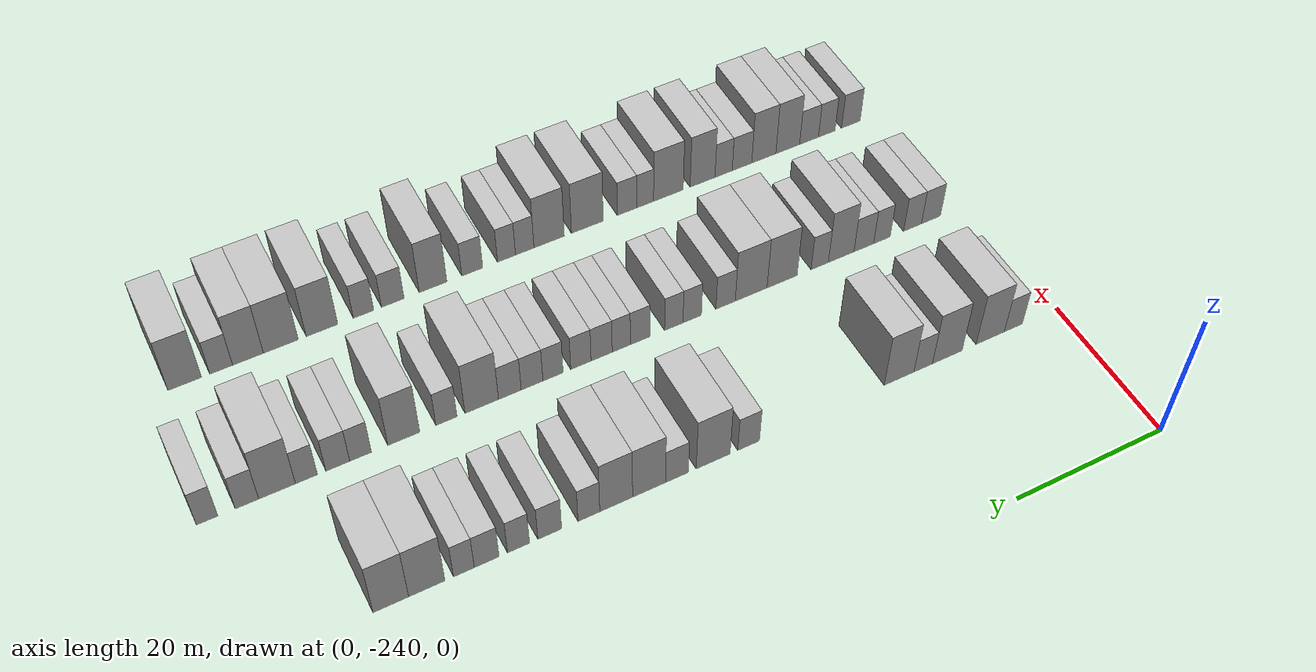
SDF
<sdf version="1.6">
 <world name="default">
  <model name="building_1">
   <static>1</static>
   <pose>25.0000 -233.6905 0 0.000000 0.000000 0.000000</pose>
   <link name="link">
    <pose>0 0 3.00 0 0 0</pose>
    <collision name="collision"><geometry><box><size>10.0000 2.6191 6.0000</size></box></geometry></collision>
    <visual name="visual">
     <cast_shadows>0</cast_shadows>
     <geometry><box><size>10.0000 2.6191 6.0000</size></box></geometry>
     <material>
      <script>
       <uri>model://HANNAS_wall/materials/scripts</uri>
       <uri>model://HANNAS_wall/materials/textures</uri>
       <name>vrc/HANNAS_wall</name>
      </script>
     </material>
    </visual>
   </link>
  </model>
  <model name="building_2">
   <static>1</static>
   <pose>25.0000 -230.3405 0 0.000000 0.000000 0.000000</pose>
   <link name="link">
    <pose>0 0 4.50 0 0 0</pose>
    <collision name="collision"><geometry><box><size>10.0000 4.0808 9.0000</size></box></geometry></collision>
    <visual name="visual">
     <cast_shadows>0</cast_shadows>
     <geometry><box><size>10.0000 4.0808 9.0000</size></box></geometry>
     <material>
      <script>
       <uri>model://HANNAS_wall/materials/scripts</uri>
       <uri>model://HANNAS_wall/materials/textures</uri>
       <name>vrc/HANNAS_wall</name>
      </script>
     </material>
    </visual>
   </link>
  </model>
  <model name="building_3">
   <static>1</static>
   <pose>25.0000 -224.1936 0 0.000000 0.000000 0.000000</pose>
   <link name="link">
    <pose>0 0 4.50 0 0 0</pose>
    <collision name="collision"><geometry><box><size>10.0000 4.2132 9.0000</size></box></geometry></collision>
    <visual name="visual">
     <cast_shadows>0</cast_shadows>
     <geometry><box><size>10.0000 4.2132 9.0000</size></box></geometry>
     <material>
      <script>
       <uri>model://HANNAS_wall/materials/scripts</uri>
       <uri>model://HANNAS_wall/materials/textures</uri>
       <name>vrc/HANNAS_wall</name>
      </script>
     </material>
    </visual>
   </link>
  </model>
  <model name="building_4">
   <static>1</static>
   <pose>25.0000 -220.7841 0 0.000000 0.000000 0.000000</pose>
   <link name="link">
    <pose>0 0 3.00 0 0 0</pose>
    <collision name="collision"><geometry><box><size>10.0000 2.6057 6.0000</size></box></geometry></collision>
    <visual name="visual">
     <cast_shadows>0</cast_shadows>
     <geometry><box><size>10.0000 2.6057 6.0000</size></box></geometry>
     <material>
      <script>
       <uri>model://HANNAS_wall/materials/scripts</uri>
       <uri>model://HANNAS_wall/materials/textures</uri>
       <name>vrc/HANNAS_wall</name>
      </script>
     </material>
    </visual>
   </link>
  </model>
  <model name="building_5">
   <static>1</static>
   <pose>25.0000 -217.4206 0 0.000000 0.000000 0.000000</pose>
   <link name="link">
    <pose>0 0 4.50 0 0 0</pose>
    <collision name="collision"><geometry><box><size>10.0000 4.1213 9.0000</size></box></geometry></collision>
    <visual name="visual">
     <cast_shadows>0</cast_shadows>
     <geometry><box><size>10.0000 4.1213 9.0000</size></box></geometry>
     <material>
      <script>
       <uri>model://HANNAS_wall/materials/scripts</uri>
       <uri>model://HANNAS_wall/materials/textures</uri>
       <name>vrc/HANNAS_wall</name>
      </script>
     </material>
    </visual>
   </link>
  </model>
  <model name="building_6">
   <static>1</static>
   <pose>25.0000 -197.1147 0 0.000000 0.000000 0.000000</pose>
   <link name="link">
    <pose>0 0 3.00 0 0 0</pose>
    <collision name="collision"><geometry><box><size>10.0000 2.8301 6.0000</size></box></geometry></collision>
    <visual name="visual">
     <cast_shadows>0</cast_shadows>
     <geometry><box><size>10.0000 2.8301 6.0000</size></box></geometry>
     <material>
      <script>
       <uri>model://HANNAS_wall/materials/scripts</uri>
       <uri>model://HANNAS_wall/materials/textures</uri>
       <name>vrc/HANNAS_wall</name>
      </script>
     </material>
    </visual>
   </link>
  </model>
  <model name="building_7">
   <static>1</static>
   <pose>25.0000 -192.5111 0 0.000000 0.000000 0.000000</pose>
   <link name="link">
    <pose>0 0 4.50 0 0 0</pose>
    <collision name="collision"><geometry><box><size>10.0000 4.3771 9.0000</size></box></geometry></collision>
    <visual name="visual">
     <cast_shadows>0</cast_shadows>
     <geometry><box><size>10.0000 4.3771 9.0000</size></box></geometry>
     <material>
      <script>
       <uri>model://HANNAS_wall/materials/scripts</uri>
       <uri>model://HANNAS_wall/materials/textures</uri>
       <name>vrc/HANNAS_wall</name>
      </script>
     </material>
    </visual>
   </link>
  </model>
  <model name="building_8">
   <static>1</static>
   <pose>25.0000 -187.8634 0 0.000000 0.000000 0.000000</pose>
   <link name="link">
    <pose>0 0 3.00 0 0 0</pose>
    <collision name="collision"><geometry><box><size>10.0000 2.9183 6.0000</size></box></geometry></collision>
    <visual name="visual">
     <cast_shadows>0</cast_shadows>
     <geometry><box><size>10.0000 2.9183 6.0000</size></box></geometry>
     <material>
      <script>
       <uri>model://HANNAS_wall/materials/scripts</uri>
       <uri>model://HANNAS_wall/materials/textures</uri>
       <name>vrc/HANNAS_wall</name>
      </script>
     </material>
    </visual>
   </link>
  </model>
  <model name="building_9">
   <static>1</static>
   <pose>25.0000 -184.3366 0 0.000000 0.000000 0.000000</pose>
   <link name="link">
    <pose>0 0 4.50 0 0 0</pose>
    <collision name="collision"><geometry><box><size>10.0000 4.1352 9.0000</size></box></geometry></collision>
    <visual name="visual">
     <cast_shadows>0</cast_shadows>
     <geometry><box><size>10.0000 4.1352 9.0000</size></box></geometry>
     <material>
      <script>
       <uri>model://HANNAS_wall/materials/scripts</uri>
       <uri>model://HANNAS_wall/materials/textures</uri>
       <name>vrc/HANNAS_wall</name>
      </script>
     </material>
    </visual>
   </link>
  </model>
  <model name="building_10">
   <static>1</static>
   <pose>25.0000 -180.2324 0 0.000000 0.000000 0.000000</pose>
   <link name="link">
    <pose>0 0 4.50 0 0 0</pose>
    <collision name="collision"><geometry><box><size>10.0000 4.0733 9.0000</size></box></geometry></collision>
    <visual name="visual">
     <cast_shadows>0</cast_shadows>
     <geometry><box><size>10.0000 4.0733 9.0000</size></box></geometry>
     <material>
      <script>
       <uri>model://HANNAS_wall/materials/scripts</uri>
       <uri>model://HANNAS_wall/materials/textures</uri>
       <name>vrc/HANNAS_wall</name>
      </script>
     </material>
    </visual>
   </link>
  </model>
  <model name="building_11">
   <static>1</static>
   <pose>25.0000 -176.8551 0 0.000000 0.000000 0.000000</pose>
   <link name="link">
    <pose>0 0 3.00 0 0 0</pose>
    <collision name="collision"><geometry><box><size>10.0000 2.6815 6.0000</size></box></geometry></collision>
    <visual name="visual">
     <cast_shadows>0</cast_shadows>
     <geometry><box><size>10.0000 2.6815 6.0000</size></box></geometry>
     <material>
      <script>
       <uri>model://HANNAS_wall/materials/scripts</uri>
       <uri>model://HANNAS_wall/materials/textures</uri>
       <name>vrc/HANNAS_wall</name>
      </script>
     </material>
    </visual>
   </link>
  </model>
  <model name="building_12">
   <static>1</static>
   <pose>25.0000 -172.0739 0 0.000000 0.000000 0.000000</pose>
   <link name="link">
    <pose>0 0 3.00 0 0 0</pose>
    <collision name="collision"><geometry><box><size>10.0000 2.8810 6.0000</size></box></geometry></collision>
    <visual name="visual">
     <cast_shadows>0</cast_shadows>
     <geometry><box><size>10.0000 2.8810 6.0000</size></box></geometry>
     <material>
      <script>
       <uri>model://HANNAS_wall/materials/scripts</uri>
       <uri>model://HANNAS_wall/materials/textures</uri>
       <name>vrc/HANNAS_wall</name>
      </script>
     </material>
    </visual>
   </link>
  </model>
  <model name="building_13">
   <static>1</static>
   <pose>25.0000 -168.3098 0 0.000000 0.000000 0.000000</pose>
   <link name="link">
    <pose>0 0 3.00 0 0 0</pose>
    <collision name="collision"><geometry><box><size>10.0000 2.6472 6.0000</size></box></geometry></collision>
    <visual name="visual">
     <cast_shadows>0</cast_shadows>
     <geometry><box><size>10.0000 2.6472 6.0000</size></box></geometry>
     <material>
      <script>
       <uri>model://HANNAS_wall/materials/scripts</uri>
       <uri>model://HANNAS_wall/materials/textures</uri>
       <name>vrc/HANNAS_wall</name>
      </script>
     </material>
    </visual>
   </link>
  </model>
  <model name="building_14">
   <static>1</static>
   <pose>25.0000 -164.5237 0 0.000000 0.000000 0.000000</pose>
   <link name="link">
    <pose>0 0 3.00 0 0 0</pose>
    <collision name="collision"><geometry><box><size>10.0000 2.9249 6.0000</size></box></geometry></collision>
    <visual name="visual">
     <cast_shadows>0</cast_shadows>
     <geometry><box><size>10.0000 2.9249 6.0000</size></box></geometry>
     <material>
      <script>
       <uri>model://HANNAS_wall/materials/scripts</uri>
       <uri>model://HANNAS_wall/materials/textures</uri>
       <name>vrc/HANNAS_wall</name>
      </script>
     </material>
    </visual>
   </link>
  </model>
  <model name="building_15">
   <static>1</static>
   <pose>25.0000 -161.8394 0 0.000000 0.000000 0.000000</pose>
   <link name="link">
    <pose>0 0 3.00 0 0 0</pose>
    <collision name="collision"><geometry><box><size>10.0000 2.4438 6.0000</size></box></geometry></collision>
    <visual name="visual">
     <cast_shadows>0</cast_shadows>
     <geometry><box><size>10.0000 2.4438 6.0000</size></box></geometry>
     <material>
      <script>
       <uri>model://HANNAS_wall/materials/scripts</uri>
       <uri>model://HANNAS_wall/materials/textures</uri>
       <name>vrc/HANNAS_wall</name>
      </script>
     </material>
    </visual>
   </link>
  </model>
  <model name="building_16">
   <static>1</static>
   <pose>25.0000 -157.5188 0 0.000000 0.000000 0.000000</pose>
   <link name="link">
    <pose>0 0 4.50 0 0 0</pose>
    <collision name="collision"><geometry><box><size>10.0000 4.1973 9.0000</size></box></geometry></collision>
    <visual name="visual">
     <cast_shadows>0</cast_shadows>
     <geometry><box><size>10.0000 4.1973 9.0000</size></box></geometry>
     <material>
      <script>
       <uri>model://HANNAS_wall/materials/scripts</uri>
       <uri>model://HANNAS_wall/materials/textures</uri>
       <name>vrc/HANNAS_wall</name>
      </script>
     </material>
    </visual>
   </link>
  </model>
  <model name="building_17">
   <static>1</static>
   <pose>25.0000 -153.3816 0 0.000000 0.000000 0.000000</pose>
   <link name="link">
    <pose>0 0 4.50 0 0 0</pose>
    <collision name="collision"><geometry><box><size>10.0000 4.0772 9.0000</size></box></geometry></collision>
    <visual name="visual">
     <cast_shadows>0</cast_shadows>
     <geometry><box><size>10.0000 4.0772 9.0000</size></box></geometry>
     <material>
      <script>
       <uri>model://HANNAS_wall/materials/scripts</uri>
       <uri>model://HANNAS_wall/materials/textures</uri>
       <name>vrc/HANNAS_wall</name>
      </script>
     </material>
    </visual>
   </link>
  </model>
  <model name="building_107">
   <static>1</static>
   <pose>44.0000 -234.5641 0 0.000000 0.000000 0.000000</pose>
   <link name="link">
    <pose>0 0 3.00 0 0 0</pose>
    <collision name="collision"><geometry><box><size>10.0000 2.8719 6.0000</size></box></geometry></collision>
    <visual name="visual">
     <cast_shadows>0</cast_shadows>
     <geometry><box><size>10.0000 2.8719 6.0000</size></box></geometry>
     <material>
      <script>
       <uri>model://HANNAS_wall/materials/scripts</uri>
       <uri>model://HANNAS_wall/materials/textures</uri>
       <name>vrc/HANNAS_wall</name>
      </script>
     </material>
    </visual>
   </link>
  </model>
  <model name="building_108">
   <static>1</static>
   <pose>44.0000 -231.7933 0 0.000000 0.000000 0.000000</pose>
   <link name="link">
    <pose>0 0 3.00 0 0 0</pose>
    <collision name="collision"><geometry><box><size>10.0000 2.6697 6.0000</size></box></geometry></collision>
    <visual name="visual">
     <cast_shadows>0</cast_shadows>
     <geometry><box><size>10.0000 2.6697 6.0000</size></box></geometry>
     <material>
      <script>
       <uri>model://HANNAS_wall/materials/scripts</uri>
       <uri>model://HANNAS_wall/materials/textures</uri>
       <name>vrc/HANNAS_wall</name>
      </script>
     </material>
    </visual>
   </link>
  </model>
  <model name="building_109">
   <static>1</static>
   <pose>44.0000 -227.2318 0 0.000000 0.000000 0.000000</pose>
   <link name="link">
    <pose>0 0 3.00 0 0 0</pose>
    <collision name="collision"><geometry><box><size>10.0000 2.4533 6.0000</size></box></geometry></collision>
    <visual name="visual">
     <cast_shadows>0</cast_shadows>
     <geometry><box><size>10.0000 2.4533 6.0000</size></box></geometry>
     <material>
      <script>
       <uri>model://HANNAS_wall/materials/scripts</uri>
       <uri>model://HANNAS_wall/materials/textures</uri>
       <name>vrc/HANNAS_wall</name>
      </script>
     </material>
    </visual>
   </link>
  </model>
  <model name="building_110">
   <static>1</static>
   <pose>44.0000 -224.5636 0 0.000000 0.000000 0.000000</pose>
   <link name="link">
    <pose>0 0 3.00 0 0 0</pose>
    <collision name="collision"><geometry><box><size>10.0000 2.8832 6.0000</size></box></geometry></collision>
    <visual name="visual">
     <cast_shadows>0</cast_shadows>
     <geometry><box><size>10.0000 2.8832 6.0000</size></box></geometry>
     <material>
      <script>
       <uri>model://HANNAS_wall/materials/scripts</uri>
       <uri>model://HANNAS_wall/materials/textures</uri>
       <name>vrc/HANNAS_wall</name>
      </script>
     </material>
    </visual>
   </link>
  </model>
  <model name="building_111">
   <static>1</static>
   <pose>44.0000 -221.2570 0 0.000000 0.000000 0.000000</pose>
   <link name="link">
    <pose>0 0 4.50 0 0 0</pose>
    <collision name="collision"><geometry><box><size>10.0000 3.7301 9.0000</size></box></geometry></collision>
    <visual name="visual">
     <cast_shadows>0</cast_shadows>
     <geometry><box><size>10.0000 3.7301 9.0000</size></box></geometry>
     <material>
      <script>
       <uri>model://HANNAS_wall/materials/scripts</uri>
       <uri>model://HANNAS_wall/materials/textures</uri>
       <name>vrc/HANNAS_wall</name>
      </script>
     </material>
    </visual>
   </link>
  </model>
  <model name="building_112">
   <static>1</static>
   <pose>44.0000 -218.1481 0 0.000000 0.000000 0.000000</pose>
   <link name="link">
    <pose>0 0 3.00 0 0 0</pose>
    <collision name="collision"><geometry><box><size>10.0000 2.4877 6.0000</size></box></geometry></collision>
    <visual name="visual">
     <cast_shadows>0</cast_shadows>
     <geometry><box><size>10.0000 2.4877 6.0000</size></box></geometry>
     <material>
      <script>
       <uri>model://HANNAS_wall/materials/scripts</uri>
       <uri>model://HANNAS_wall/materials/textures</uri>
       <name>vrc/HANNAS_wall</name>
      </script>
     </material>
    </visual>
   </link>
  </model>
  <model name="building_113">
   <static>1</static>
   <pose>44.0000 -212.7710 0 0.000000 0.000000 0.000000</pose>
   <link name="link">
    <pose>0 0 4.50 0 0 0</pose>
    <collision name="collision"><geometry><box><size>10.0000 4.2664 9.0000</size></box></geometry></collision>
    <visual name="visual">
     <cast_shadows>0</cast_shadows>
     <geometry><box><size>10.0000 4.2664 9.0000</size></box></geometry>
     <material>
      <script>
       <uri>model://HANNAS_wall/materials/scripts</uri>
       <uri>model://HANNAS_wall/materials/textures</uri>
       <name>vrc/HANNAS_wall</name>
      </script>
     </material>
    </visual>
   </link>
  </model>
  <model name="building_114">
   <static>1</static>
   <pose>44.0000 -208.4080 0 0.000000 0.000000 0.000000</pose>
   <link name="link">
    <pose>0 0 4.50 0 0 0</pose>
    <collision name="collision"><geometry><box><size>10.0000 4.4597 9.0000</size></box></geometry></collision>
    <visual name="visual">
     <cast_shadows>0</cast_shadows>
     <geometry><box><size>10.0000 4.4597 9.0000</size></box></geometry>
     <material>
      <script>
       <uri>model://HANNAS_wall/materials/scripts</uri>
       <uri>model://HANNAS_wall/materials/textures</uri>
       <name>vrc/HANNAS_wall</name>
      </script>
     </material>
    </visual>
   </link>
  </model>
  <model name="building_115">
   <static>1</static>
   <pose>44.0000 -204.8289 0 0.000000 0.000000 0.000000</pose>
   <link name="link">
    <pose>0 0 3.00 0 0 0</pose>
    <collision name="collision"><geometry><box><size>10.0000 2.6985 6.0000</size></box></geometry></collision>
    <visual name="visual">
     <cast_shadows>0</cast_shadows>
     <geometry><box><size>10.0000 2.6985 6.0000</size></box></geometry>
     <material>
      <script>
       <uri>model://HANNAS_wall/materials/scripts</uri>
       <uri>model://HANNAS_wall/materials/textures</uri>
       <name>vrc/HANNAS_wall</name>
      </script>
     </material>
    </visual>
   </link>
  </model>
  <model name="building_116">
   <static>1</static>
   <pose>44.0000 -200.2152 0 0.000000 0.000000 0.000000</pose>
   <link name="link">
    <pose>0 0 3.00 0 0 0</pose>
    <collision name="collision"><geometry><box><size>10.0000 2.5290 6.0000</size></box></geometry></collision>
    <visual name="visual">
     <cast_shadows>0</cast_shadows>
     <geometry><box><size>10.0000 2.5290 6.0000</size></box></geometry>
     <material>
      <script>
       <uri>model://HANNAS_wall/materials/scripts</uri>
       <uri>model://HANNAS_wall/materials/textures</uri>
       <name>vrc/HANNAS_wall</name>
      </script>
     </material>
    </visual>
   </link>
  </model>
  <model name="building_117">
   <static>1</static>
   <pose>44.0000 -197.6990 0 0.000000 0.000000 0.000000</pose>
   <link name="link">
    <pose>0 0 3.00 0 0 0</pose>
    <collision name="collision"><geometry><box><size>10.0000 2.5033 6.0000</size></box></geometry></collision>
    <visual name="visual">
     <cast_shadows>0</cast_shadows>
     <geometry><box><size>10.0000 2.5033 6.0000</size></box></geometry>
     <material>
      <script>
       <uri>model://HANNAS_wall/materials/scripts</uri>
       <uri>model://HANNAS_wall/materials/textures</uri>
       <name>vrc/HANNAS_wall</name>
      </script>
     </material>
    </visual>
   </link>
  </model>
  <model name="building_118">
   <static>1</static>
   <pose>44.0000 -193.1382 0 0.000000 0.000000 0.000000</pose>
   <link name="link">
    <pose>0 0 3.00 0 0 0</pose>
    <collision name="collision"><geometry><box><size>10.0000 2.6183 6.0000</size></box></geometry></collision>
    <visual name="visual">
     <cast_shadows>0</cast_shadows>
     <geometry><box><size>10.0000 2.6183 6.0000</size></box></geometry>
     <material>
      <script>
       <uri>model://HANNAS_wall/materials/scripts</uri>
       <uri>model://HANNAS_wall/materials/textures</uri>
       <name>vrc/HANNAS_wall</name>
      </script>
     </material>
    </visual>
   </link>
  </model>
  <model name="building_119">
   <static>1</static>
   <pose>44.0000 -190.6228 0 0.000000 0.000000 0.000000</pose>
   <link name="link">
    <pose>0 0 3.00 0 0 0</pose>
    <collision name="collision"><geometry><box><size>10.0000 2.4126 6.0000</size></box></geometry></collision>
    <visual name="visual">
     <cast_shadows>0</cast_shadows>
     <geometry><box><size>10.0000 2.4126 6.0000</size></box></geometry>
     <material>
      <script>
       <uri>model://HANNAS_wall/materials/scripts</uri>
       <uri>model://HANNAS_wall/materials/textures</uri>
       <name>vrc/HANNAS_wall</name>
      </script>
     </material>
    </visual>
   </link>
  </model>
  <model name="building_120">
   <static>1</static>
   <pose>44.0000 -188.0159 0 0.000000 0.000000 0.000000</pose>
   <link name="link">
    <pose>0 0 3.00 0 0 0</pose>
    <collision name="collision"><geometry><box><size>10.0000 2.8012 6.0000</size></box></geometry></collision>
    <visual name="visual">
     <cast_shadows>0</cast_shadows>
     <geometry><box><size>10.0000 2.8012 6.0000</size></box></geometry>
     <material>
      <script>
       <uri>model://HANNAS_wall/materials/scripts</uri>
       <uri>model://HANNAS_wall/materials/textures</uri>
       <name>vrc/HANNAS_wall</name>
      </script>
     </material>
    </visual>
   </link>
  </model>
  <model name="building_121">
   <static>1</static>
   <pose>44.0000 -185.2787 0 0.000000 0.000000 0.000000</pose>
   <link name="link">
    <pose>0 0 3.00 0 0 0</pose>
    <collision name="collision"><geometry><box><size>10.0000 2.6733 6.0000</size></box></geometry></collision>
    <visual name="visual">
     <cast_shadows>0</cast_shadows>
     <geometry><box><size>10.0000 2.6733 6.0000</size></box></geometry>
     <material>
      <script>
       <uri>model://HANNAS_wall/materials/scripts</uri>
       <uri>model://HANNAS_wall/materials/textures</uri>
       <name>vrc/HANNAS_wall</name>
      </script>
     </material>
    </visual>
   </link>
  </model>
  <model name="building_122">
   <static>1</static>
   <pose>44.0000 -181.6311 0 0.000000 0.000000 0.000000</pose>
   <link name="link">
    <pose>0 0 3.00 0 0 0</pose>
    <collision name="collision"><geometry><box><size>10.0000 2.6218 6.0000</size></box></geometry></collision>
    <visual name="visual">
     <cast_shadows>0</cast_shadows>
     <geometry><box><size>10.0000 2.6218 6.0000</size></box></geometry>
     <material>
      <script>
       <uri>model://HANNAS_wall/materials/scripts</uri>
       <uri>model://HANNAS_wall/materials/textures</uri>
       <name>vrc/HANNAS_wall</name>
      </script>
     </material>
    </visual>
   </link>
  </model>
  <model name="building_123">
   <static>1</static>
   <pose>44.0000 -178.9234 0 0.000000 0.000000 0.000000</pose>
   <link name="link">
    <pose>0 0 3.00 0 0 0</pose>
    <collision name="collision"><geometry><box><size>10.0000 2.7937 6.0000</size></box></geometry></collision>
    <visual name="visual">
     <cast_shadows>0</cast_shadows>
     <geometry><box><size>10.0000 2.7937 6.0000</size></box></geometry>
     <material>
      <script>
       <uri>model://HANNAS_wall/materials/scripts</uri>
       <uri>model://HANNAS_wall/materials/textures</uri>
       <name>vrc/HANNAS_wall</name>
      </script>
     </material>
    </visual>
   </link>
  </model>
  <model name="building_124">
   <static>1</static>
   <pose>44.0000 -176.0710 0 0.000000 0.000000 0.000000</pose>
   <link name="link">
    <pose>0 0 3.00 0 0 0</pose>
    <collision name="collision"><geometry><box><size>10.0000 2.9110 6.0000</size></box></geometry></collision>
    <visual name="visual">
     <cast_shadows>0</cast_shadows>
     <geometry><box><size>10.0000 2.9110 6.0000</size></box></geometry>
     <material>
      <script>
       <uri>model://HANNAS_wall/materials/scripts</uri>
       <uri>model://HANNAS_wall/materials/textures</uri>
       <name>vrc/HANNAS_wall</name>
      </script>
     </material>
    </visual>
   </link>
  </model>
  <model name="building_125">
   <static>1</static>
   <pose>44.0000 -172.4973 0 0.000000 0.000000 0.000000</pose>
   <link name="link">
    <pose>0 0 4.50 0 0 0</pose>
    <collision name="collision"><geometry><box><size>10.0000 4.2364 9.0000</size></box></geometry></collision>
    <visual name="visual">
     <cast_shadows>0</cast_shadows>
     <geometry><box><size>10.0000 4.2364 9.0000</size></box></geometry>
     <material>
      <script>
       <uri>model://HANNAS_wall/materials/scripts</uri>
       <uri>model://HANNAS_wall/materials/textures</uri>
       <name>vrc/HANNAS_wall</name>
      </script>
     </material>
    </visual>
   </link>
  </model>
  <model name="building_126">
   <static>1</static>
   <pose>44.0000 -168.0580 0 0.000000 0.000000 0.000000</pose>
   <link name="link">
    <pose>0 0 3.00 0 0 0</pose>
    <collision name="collision"><geometry><box><size>10.0000 2.6422 6.0000</size></box></geometry></collision>
    <visual name="visual">
     <cast_shadows>0</cast_shadows>
     <geometry><box><size>10.0000 2.6422 6.0000</size></box></geometry>
     <material>
      <script>
       <uri>model://HANNAS_wall/materials/scripts</uri>
       <uri>model://HANNAS_wall/materials/textures</uri>
       <name>vrc/HANNAS_wall</name>
      </script>
     </material>
    </visual>
   </link>
  </model>
  <model name="building_127">
   <static>1</static>
   <pose>44.0000 -162.7755 0 0.000000 0.000000 0.000000</pose>
   <link name="link">
    <pose>0 0 4.50 0 0 0</pose>
    <collision name="collision"><geometry><box><size>10.0000 3.9229 9.0000</size></box></geometry></collision>
    <visual name="visual">
     <cast_shadows>0</cast_shadows>
     <geometry><box><size>10.0000 3.9229 9.0000</size></box></geometry>
     <material>
      <script>
       <uri>model://HANNAS_wall/materials/scripts</uri>
       <uri>model://HANNAS_wall/materials/textures</uri>
       <name>vrc/HANNAS_wall</name>
      </script>
     </material>
    </visual>
   </link>
  </model>
  <model name="building_128">
   <static>1</static>
   <pose>44.0000 -157.5037 0 0.000000 0.000000 0.000000</pose>
   <link name="link">
    <pose>0 0 3.00 0 0 0</pose>
    <collision name="collision"><geometry><box><size>10.0000 2.6205 6.0000</size></box></geometry></collision>
    <visual name="visual">
     <cast_shadows>0</cast_shadows>
     <geometry><box><size>10.0000 2.6205 6.0000</size></box></geometry>
     <material>
      <script>
       <uri>model://HANNAS_wall/materials/scripts</uri>
       <uri>model://HANNAS_wall/materials/textures</uri>
       <name>vrc/HANNAS_wall</name>
      </script>
     </material>
    </visual>
   </link>
  </model>
  <model name="building_129">
   <static>1</static>
   <pose>44.0000 -154.7607 0 0.000000 0.000000 0.000000</pose>
   <link name="link">
    <pose>0 0 3.00 0 0 0</pose>
    <collision name="collision"><geometry><box><size>10.0000 2.8656 6.0000</size></box></geometry></collision>
    <visual name="visual">
     <cast_shadows>0</cast_shadows>
     <geometry><box><size>10.0000 2.8656 6.0000</size></box></geometry>
     <material>
      <script>
       <uri>model://HANNAS_wall/materials/scripts</uri>
       <uri>model://HANNAS_wall/materials/textures</uri>
       <name>vrc/HANNAS_wall</name>
      </script>
     </material>
    </visual>
   </link>
  </model>
  <model name="building_130">
   <static>1</static>
   <pose>44.0000 -151.0231 0 0.000000 0.000000 0.000000</pose>
   <link name="link">
    <pose>0 0 3.00 0 0 0</pose>
    <collision name="collision"><geometry><box><size>10.0000 2.6096 6.0000</size></box></geometry></collision>
    <visual name="visual">
     <cast_shadows>0</cast_shadows>
     <geometry><box><size>10.0000 2.6096 6.0000</size></box></geometry>
     <material>
      <script>
       <uri>model://HANNAS_wall/materials/scripts</uri>
       <uri>model://HANNAS_wall/materials/textures</uri>
       <name>vrc/HANNAS_wall</name>
      </script>
     </material>
    </visual>
   </link>
  </model>
  <model name="building_131">
   <static>1</static>
   <pose>44.0000 -147.5582 0 0.000000 0.000000 0.000000</pose>
   <link name="link">
    <pose>0 0 4.50 0 0 0</pose>
    <collision name="collision"><geometry><box><size>10.0000 4.3203 9.0000</size></box></geometry></collision>
    <visual name="visual">
     <cast_shadows>0</cast_shadows>
     <geometry><box><size>10.0000 4.3203 9.0000</size></box></geometry>
     <material>
      <script>
       <uri>model://HANNAS_wall/materials/scripts</uri>
       <uri>model://HANNAS_wall/materials/textures</uri>
       <name>vrc/HANNAS_wall</name>
      </script>
     </material>
    </visual>
   </link>
  </model>
  <model name="building_132">
   <static>1</static>
   <pose>44.0000 -144.0333 0 0.000000 0.000000 0.000000</pose>
   <link name="link">
    <pose>0 0 3.00 0 0 0</pose>
    <collision name="collision"><geometry><box><size>10.0000 2.7294 6.0000</size></box></geometry></collision>
    <visual name="visual">
     <cast_shadows>0</cast_shadows>
     <geometry><box><size>10.0000 2.7294 6.0000</size></box></geometry>
     <material>
      <script>
       <uri>model://HANNAS_wall/materials/scripts</uri>
       <uri>model://HANNAS_wall/materials/textures</uri>
       <name>vrc/HANNAS_wall</name>
      </script>
     </material>
    </visual>
   </link>
  </model>
  <model name="building_133">
   <static>1</static>
   <pose>44.0000 -139.4339 0 0.000000 0.000000 0.000000</pose>
   <link name="link">
    <pose>0 0 3.00 0 0 0</pose>
    <collision name="collision"><geometry><box><size>10.0000 2.4694 6.0000</size></box></geometry></collision>
    <visual name="visual">
     <cast_shadows>0</cast_shadows>
     <geometry><box><size>10.0000 2.4694 6.0000</size></box></geometry>
     <material>
      <script>
       <uri>model://HANNAS_wall/materials/scripts</uri>
       <uri>model://HANNAS_wall/materials/textures</uri>
       <name>vrc/HANNAS_wall</name>
      </script>
     </material>
    </visual>
   </link>
  </model>
  <model name="building_229">
   <static>1</static>
   <pose>63.0000 -234.5534 0 0.000000 0.000000 0.000000</pose>
   <link name="link">
    <pose>0 0 3.00 0 0 0</pose>
    <collision name="collision"><geometry><box><size>10.0000 2.8931 6.0000</size></box></geometry></collision>
    <visual name="visual">
     <cast_shadows>0</cast_shadows>
     <geometry><box><size>10.0000 2.8931 6.0000</size></box></geometry>
     <material>
      <script>
       <uri>model://HANNAS_wall/materials/scripts</uri>
       <uri>model://HANNAS_wall/materials/textures</uri>
       <name>vrc/HANNAS_wall</name>
      </script>
     </material>
    </visual>
   </link>
  </model>
  <model name="building_230">
   <static>1</static>
   <pose>63.0000 -230.8310 0 0.000000 0.000000 0.000000</pose>
   <link name="link">
    <pose>0 0 3.00 0 0 0</pose>
    <collision name="collision"><geometry><box><size>10.0000 2.5517 6.0000</size></box></geometry></collision>
    <visual name="visual">
     <cast_shadows>0</cast_shadows>
     <geometry><box><size>10.0000 2.5517 6.0000</size></box></geometry>
     <material>
      <script>
       <uri>model://HANNAS_wall/materials/scripts</uri>
       <uri>model://HANNAS_wall/materials/textures</uri>
       <name>vrc/HANNAS_wall</name>
      </script>
     </material>
    </visual>
   </link>
  </model>
  <model name="building_231">
   <static>1</static>
   <pose>63.0000 -228.1096 0 0.000000 0.000000 0.000000</pose>
   <link name="link">
    <pose>0 0 3.00 0 0 0</pose>
    <collision name="collision"><geometry><box><size>10.0000 2.8911 6.0000</size></box></geometry></collision>
    <visual name="visual">
     <cast_shadows>0</cast_shadows>
     <geometry><box><size>10.0000 2.8911 6.0000</size></box></geometry>
     <material>
      <script>
       <uri>model://HANNAS_wall/materials/scripts</uri>
       <uri>model://HANNAS_wall/materials/textures</uri>
       <name>vrc/HANNAS_wall</name>
      </script>
     </material>
    </visual>
   </link>
  </model>
  <model name="building_232">
   <static>1</static>
   <pose>63.0000 -224.8592 0 0.000000 0.000000 0.000000</pose>
   <link name="link">
    <pose>0 0 4.50 0 0 0</pose>
    <collision name="collision"><geometry><box><size>10.0000 3.6097 9.0000</size></box></geometry></collision>
    <visual name="visual">
     <cast_shadows>0</cast_shadows>
     <geometry><box><size>10.0000 3.6097 9.0000</size></box></geometry>
     <material>
      <script>
       <uri>model://HANNAS_wall/materials/scripts</uri>
       <uri>model://HANNAS_wall/materials/textures</uri>
       <name>vrc/HANNAS_wall</name>
      </script>
     </material>
    </visual>
   </link>
  </model>
  <model name="building_233">
   <static>1</static>
   <pose>63.0000 -221.2357 0 0.000000 0.000000 0.000000</pose>
   <link name="link">
    <pose>0 0 4.50 0 0 0</pose>
    <collision name="collision"><geometry><box><size>10.0000 3.6371 9.0000</size></box></geometry></collision>
    <visual name="visual">
     <cast_shadows>0</cast_shadows>
     <geometry><box><size>10.0000 3.6371 9.0000</size></box></geometry>
     <material>
      <script>
       <uri>model://HANNAS_wall/materials/scripts</uri>
       <uri>model://HANNAS_wall/materials/textures</uri>
       <name>vrc/HANNAS_wall</name>
      </script>
     </material>
    </visual>
   </link>
  </model>
  <model name="building_234">
   <static>1</static>
   <pose>63.0000 -217.9636 0 0.000000 0.000000 0.000000</pose>
   <link name="link">
    <pose>0 0 3.00 0 0 0</pose>
    <collision name="collision"><geometry><box><size>10.0000 2.9072 6.0000</size></box></geometry></collision>
    <visual name="visual">
     <cast_shadows>0</cast_shadows>
     <geometry><box><size>10.0000 2.9072 6.0000</size></box></geometry>
     <material>
      <script>
       <uri>model://HANNAS_wall/materials/scripts</uri>
       <uri>model://HANNAS_wall/materials/textures</uri>
       <name>vrc/HANNAS_wall</name>
      </script>
     </material>
    </visual>
   </link>
  </model>
  <model name="building_235">
   <static>1</static>
   <pose>63.0000 -215.2383 0 0.000000 0.000000 0.000000</pose>
   <link name="link">
    <pose>0 0 3.00 0 0 0</pose>
    <collision name="collision"><geometry><box><size>10.0000 2.5433 6.0000</size></box></geometry></collision>
    <visual name="visual">
     <cast_shadows>0</cast_shadows>
     <geometry><box><size>10.0000 2.5433 6.0000</size></box></geometry>
     <material>
      <script>
       <uri>model://HANNAS_wall/materials/scripts</uri>
       <uri>model://HANNAS_wall/materials/textures</uri>
       <name>vrc/HANNAS_wall</name>
      </script>
     </material>
    </visual>
   </link>
  </model>
  <model name="building_236">
   <static>1</static>
   <pose>63.0000 -212.1379 0 0.000000 0.000000 0.000000</pose>
   <link name="link">
    <pose>0 0 4.50 0 0 0</pose>
    <collision name="collision"><geometry><box><size>10.0000 3.6576 9.0000</size></box></geometry></collision>
    <visual name="visual">
     <cast_shadows>0</cast_shadows>
     <geometry><box><size>10.0000 3.6576 9.0000</size></box></geometry>
     <material>
      <script>
       <uri>model://HANNAS_wall/materials/scripts</uri>
       <uri>model://HANNAS_wall/materials/textures</uri>
       <name>vrc/HANNAS_wall</name>
      </script>
     </material>
    </visual>
   </link>
  </model>
  <model name="building_237">
   <static>1</static>
   <pose>63.0000 -207.1565 0 0.000000 0.000000 0.000000</pose>
   <link name="link">
    <pose>0 0 4.50 0 0 0</pose>
    <collision name="collision"><geometry><box><size>10.0000 4.3052 9.0000</size></box></geometry></collision>
    <visual name="visual">
     <cast_shadows>0</cast_shadows>
     <geometry><box><size>10.0000 4.3052 9.0000</size></box></geometry>
     <material>
      <script>
       <uri>model://HANNAS_wall/materials/scripts</uri>
       <uri>model://HANNAS_wall/materials/textures</uri>
       <name>vrc/HANNAS_wall</name>
      </script>
     </material>
    </visual>
   </link>
  </model>
  <model name="building_238">
   <static>1</static>
   <pose>63.0000 -203.8002 0 0.000000 0.000000 0.000000</pose>
   <link name="link">
    <pose>0 0 3.00 0 0 0</pose>
    <collision name="collision"><geometry><box><size>10.0000 2.4074 6.0000</size></box></geometry></collision>
    <visual name="visual">
     <cast_shadows>0</cast_shadows>
     <geometry><box><size>10.0000 2.4074 6.0000</size></box></geometry>
     <material>
      <script>
       <uri>model://HANNAS_wall/materials/scripts</uri>
       <uri>model://HANNAS_wall/materials/textures</uri>
       <name>vrc/HANNAS_wall</name>
      </script>
     </material>
    </visual>
   </link>
  </model>
  <model name="building_239">
   <static>1</static>
   <pose>63.0000 -201.2055 0 0.000000 0.000000 0.000000</pose>
   <link name="link">
    <pose>0 0 3.00 0 0 0</pose>
    <collision name="collision"><geometry><box><size>10.0000 2.7820 6.0000</size></box></geometry></collision>
    <visual name="visual">
     <cast_shadows>0</cast_shadows>
     <geometry><box><size>10.0000 2.7820 6.0000</size></box></geometry>
     <material>
      <script>
       <uri>model://HANNAS_wall/materials/scripts</uri>
       <uri>model://HANNAS_wall/materials/textures</uri>
       <name>vrc/HANNAS_wall</name>
      </script>
     </material>
    </visual>
   </link>
  </model>
  <model name="building_240">
   <static>1</static>
   <pose>63.0000 -195.5870 0 0.000000 0.000000 0.000000</pose>
   <link name="link">
    <pose>0 0 4.50 0 0 0</pose>
    <collision name="collision"><geometry><box><size>10.0000 4.4549 9.0000</size></box></geometry></collision>
    <visual name="visual">
     <cast_shadows>0</cast_shadows>
     <geometry><box><size>10.0000 4.4549 9.0000</size></box></geometry>
     <material>
      <script>
       <uri>model://HANNAS_wall/materials/scripts</uri>
       <uri>model://HANNAS_wall/materials/textures</uri>
       <name>vrc/HANNAS_wall</name>
      </script>
     </material>
    </visual>
   </link>
  </model>
  <model name="building_241">
   <static>1</static>
   <pose>63.0000 -190.2609 0 0.000000 0.000000 0.000000</pose>
   <link name="link">
    <pose>0 0 4.50 0 0 0</pose>
    <collision name="collision"><geometry><box><size>10.0000 4.1972 9.0000</size></box></geometry></collision>
    <visual name="visual">
     <cast_shadows>0</cast_shadows>
     <geometry><box><size>10.0000 4.1972 9.0000</size></box></geometry>
     <material>
      <script>
       <uri>model://HANNAS_wall/materials/scripts</uri>
       <uri>model://HANNAS_wall/materials/textures</uri>
       <name>vrc/HANNAS_wall</name>
      </script>
     </material>
    </visual>
   </link>
  </model>
  <model name="building_242">
   <static>1</static>
   <pose>63.0000 -186.8964 0 0.000000 0.000000 0.000000</pose>
   <link name="link">
    <pose>0 0 3.00 0 0 0</pose>
    <collision name="collision"><geometry><box><size>10.0000 2.5318 6.0000</size></box></geometry></collision>
    <visual name="visual">
     <cast_shadows>0</cast_shadows>
     <geometry><box><size>10.0000 2.5318 6.0000</size></box></geometry>
     <material>
      <script>
       <uri>model://HANNAS_wall/materials/scripts</uri>
       <uri>model://HANNAS_wall/materials/textures</uri>
       <name>vrc/HANNAS_wall</name>
      </script>
     </material>
    </visual>
   </link>
  </model>
  <model name="building_243">
   <static>1</static>
   <pose>63.0000 -184.4065 0 0.000000 0.000000 0.000000</pose>
   <link name="link">
    <pose>0 0 3.00 0 0 0</pose>
    <collision name="collision"><geometry><box><size>10.0000 2.4480 6.0000</size></box></geometry></collision>
    <visual name="visual">
     <cast_shadows>0</cast_shadows>
     <geometry><box><size>10.0000 2.4480 6.0000</size></box></geometry>
     <material>
      <script>
       <uri>model://HANNAS_wall/materials/scripts</uri>
       <uri>model://HANNAS_wall/materials/textures</uri>
       <name>vrc/HANNAS_wall</name>
      </script>
     </material>
    </visual>
   </link>
  </model>
  <model name="building_244">
   <static>1</static>
   <pose>63.0000 -179.7766 0 0.000000 0.000000 0.000000</pose>
   <link name="link">
    <pose>0 0 3.00 0 0 0</pose>
    <collision name="collision"><geometry><box><size>10.0000 2.8117 6.0000</size></box></geometry></collision>
    <visual name="visual">
     <cast_shadows>0</cast_shadows>
     <geometry><box><size>10.0000 2.8117 6.0000</size></box></geometry>
     <material>
      <script>
       <uri>model://HANNAS_wall/materials/scripts</uri>
       <uri>model://HANNAS_wall/materials/textures</uri>
       <name>vrc/HANNAS_wall</name>
      </script>
     </material>
    </visual>
   </link>
  </model>
  <model name="building_245">
   <static>1</static>
   <pose>63.0000 -174.5413 0 0.000000 0.000000 0.000000</pose>
   <link name="link">
    <pose>0 0 4.50 0 0 0</pose>
    <collision name="collision"><geometry><box><size>10.0000 3.6588 9.0000</size></box></geometry></collision>
    <visual name="visual">
     <cast_shadows>0</cast_shadows>
     <geometry><box><size>10.0000 3.6588 9.0000</size></box></geometry>
     <material>
      <script>
       <uri>model://HANNAS_wall/materials/scripts</uri>
       <uri>model://HANNAS_wall/materials/textures</uri>
       <name>vrc/HANNAS_wall</name>
      </script>
     </material>
    </visual>
   </link>
  </model>
  <model name="building_246">
   <static>1</static>
   <pose>63.0000 -169.2370 0 0.000000 0.000000 0.000000</pose>
   <link name="link">
    <pose>0 0 3.00 0 0 0</pose>
    <collision name="collision"><geometry><box><size>10.0000 2.9498 6.0000</size></box></geometry></collision>
    <visual name="visual">
     <cast_shadows>0</cast_shadows>
     <geometry><box><size>10.0000 2.9498 6.0000</size></box></geometry>
     <material>
      <script>
       <uri>model://HANNAS_wall/materials/scripts</uri>
       <uri>model://HANNAS_wall/materials/textures</uri>
       <name>vrc/HANNAS_wall</name>
      </script>
     </material>
    </visual>
   </link>
  </model>
  <model name="building_247">
   <static>1</static>
   <pose>63.0000 -165.4428 0 0.000000 0.000000 0.000000</pose>
   <link name="link">
    <pose>0 0 3.00 0 0 0</pose>
    <collision name="collision"><geometry><box><size>10.0000 2.6386 6.0000</size></box></geometry></collision>
    <visual name="visual">
     <cast_shadows>0</cast_shadows>
     <geometry><box><size>10.0000 2.6386 6.0000</size></box></geometry>
     <material>
      <script>
       <uri>model://HANNAS_wall/materials/scripts</uri>
       <uri>model://HANNAS_wall/materials/textures</uri>
       <name>vrc/HANNAS_wall</name>
      </script>
     </material>
    </visual>
   </link>
  </model>
  <model name="building_248">
   <static>1</static>
   <pose>63.0000 -160.1108 0 0.000000 0.000000 0.000000</pose>
   <link name="link">
    <pose>0 0 4.50 0 0 0</pose>
    <collision name="collision"><geometry><box><size>10.0000 4.0255 9.0000</size></box></geometry></collision>
    <visual name="visual">
     <cast_shadows>0</cast_shadows>
     <geometry><box><size>10.0000 4.0255 9.0000</size></box></geometry>
     <material>
      <script>
       <uri>model://HANNAS_wall/materials/scripts</uri>
       <uri>model://HANNAS_wall/materials/textures</uri>
       <name>vrc/HANNAS_wall</name>
      </script>
     </material>
    </visual>
   </link>
  </model>
  <model name="building_249">
   <static>1</static>
   <pose>63.0000 -154.9173 0 0.000000 0.000000 0.000000</pose>
   <link name="link">
    <pose>0 0 4.50 0 0 0</pose>
    <collision name="collision"><geometry><box><size>10.0000 4.3615 9.0000</size></box></geometry></collision>
    <visual name="visual">
     <cast_shadows>0</cast_shadows>
     <geometry><box><size>10.0000 4.3615 9.0000</size></box></geometry>
     <material>
      <script>
       <uri>model://HANNAS_wall/materials/scripts</uri>
       <uri>model://HANNAS_wall/materials/textures</uri>
       <name>vrc/HANNAS_wall</name>
      </script>
     </material>
    </visual>
   </link>
  </model>
  <model name="building_250">
   <static>1</static>
   <pose>63.0000 -150.8286 0 0.000000 0.000000 0.000000</pose>
   <link name="link">
    <pose>0 0 4.50 0 0 0</pose>
    <collision name="collision"><geometry><box><size>10.0000 3.8158 9.0000</size></box></geometry></collision>
    <visual name="visual">
     <cast_shadows>0</cast_shadows>
     <geometry><box><size>10.0000 3.8158 9.0000</size></box></geometry>
     <material>
      <script>
       <uri>model://HANNAS_wall/materials/scripts</uri>
       <uri>model://HANNAS_wall/materials/textures</uri>
       <name>vrc/HANNAS_wall</name>
      </script>
     </material>
    </visual>
   </link>
  </model>
  <model name="building_251">
   <static>1</static>
   <pose>63.0000 -147.5179 0 0.000000 0.000000 0.000000</pose>
   <link name="link">
    <pose>0 0 3.00 0 0 0</pose>
    <collision name="collision"><geometry><box><size>10.0000 2.8055 6.0000</size></box></geometry></collision>
    <visual name="visual">
     <cast_shadows>0</cast_shadows>
     <geometry><box><size>10.0000 2.8055 6.0000</size></box></geometry>
     <material>
      <script>
       <uri>model://HANNAS_wall/materials/scripts</uri>
       <uri>model://HANNAS_wall/materials/textures</uri>
       <name>vrc/HANNAS_wall</name>
      </script>
     </material>
    </visual>
   </link>
  </model>
  <model name="building_252">
   <static>1</static>
   <pose>63.0000 -143.0767 0 0.000000 0.000000 0.000000</pose>
   <link name="link">
    <pose>0 0 4.50 0 0 0</pose>
    <collision name="collision"><geometry><box><size>10.0000 4.0769 9.0000</size></box></geometry></collision>
    <visual name="visual">
     <cast_shadows>0</cast_shadows>
     <geometry><box><size>10.0000 4.0769 9.0000</size></box></geometry>
     <material>
      <script>
       <uri>model://HANNAS_wall/materials/scripts</uri>
       <uri>model://HANNAS_wall/materials/textures</uri>
       <name>vrc/HANNAS_wall</name>
      </script>
     </material>
    </visual>
   </link>
  </model>
 </world>
</sdf>
